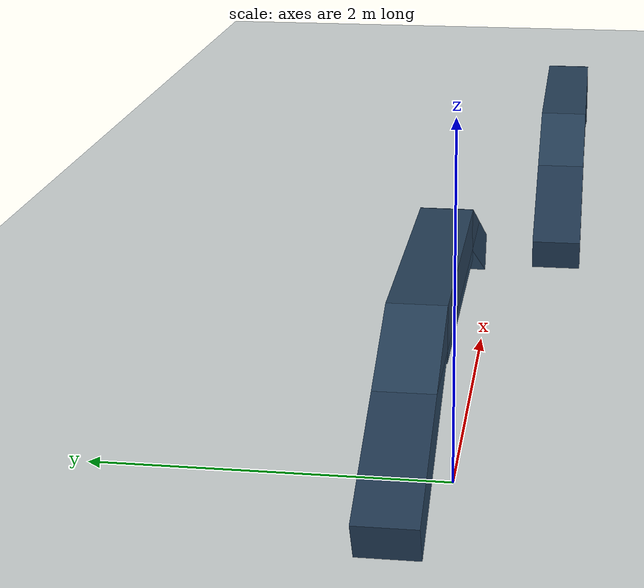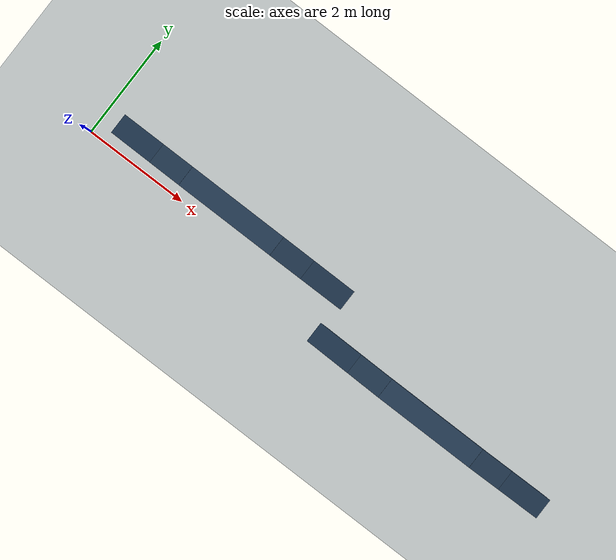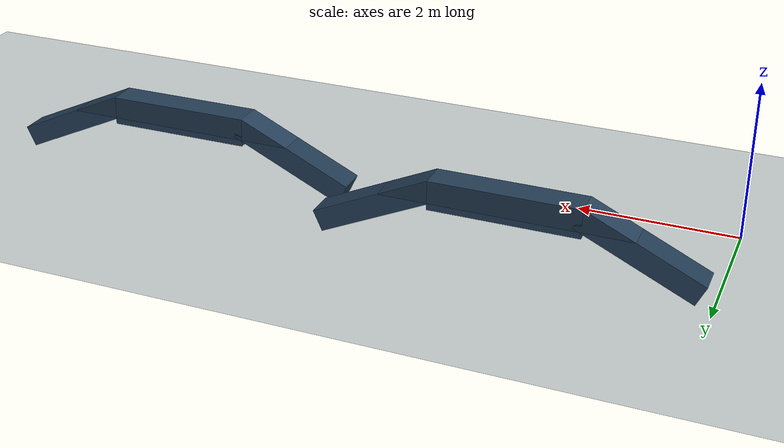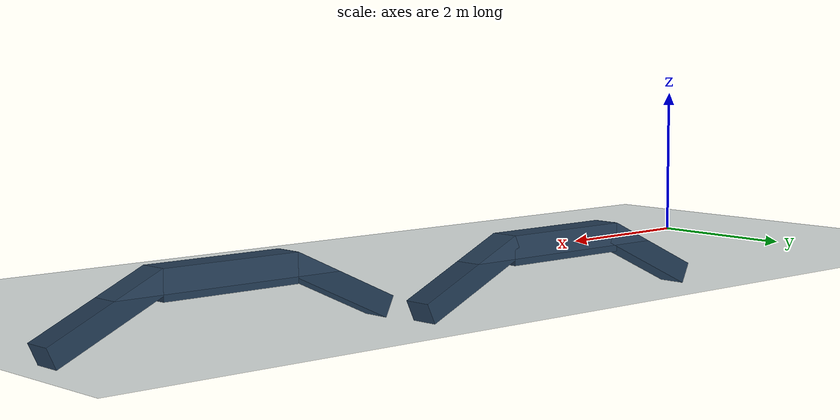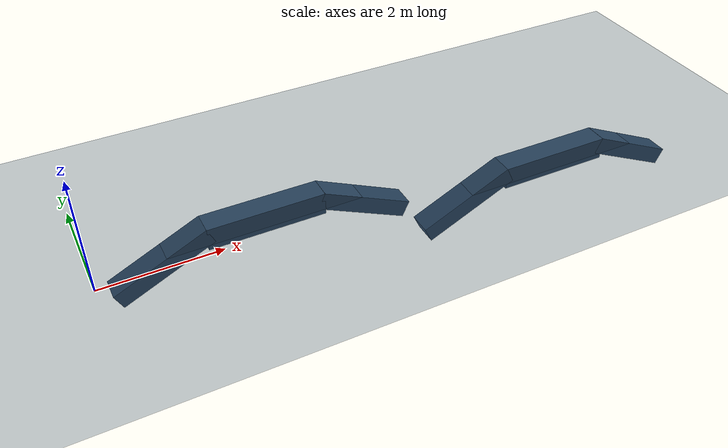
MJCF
<mujoco model="scenario">
  <option timestep="0.00050000000000000001" integrator="implicitfast"/>
  <visual>
    <global azimuth="150" elevation="-20"/>
    <headlight ambient="0.29999999999999999 0.29999999999999999 0.29999999999999999" diffuse="0.59999999999999998 0.59999999999999998 0.59999999999999998" specular="0 0 0"/>
    <rgba haze="0.14999999999999999 0.25 0.34999999999999998 1"/>
  </visual>
  <default>
    <default class="scene/"/>
  </default>
  <asset>
    <texture name="skybox" builtin="gradient" rgb1="0.29999999999999999 0.5 0.69999999999999996" rgb2="0 0 0" width="512" height="3072"/>
    <texture name="grouplane" type="2d" builtin="checker" rgb1="0.20000000000000001 0.29999999999999999 0.40000000000000002" rgb2="0.10000000000000001 0.20000000000000001 0.29999999999999999" mark="edge" markrgb="0.80000000000000004 0.80000000000000004 0.80000000000000004" width="300" height="300"/>
    <material name="groundplane_mat" class="scene/" texture="grouplane" texrepeat="5 5" texuniform="true" reflectance="0.20000000000000001"/>
  </asset>
  <worldbody>
    <light name="global_light" class="scene/" directional="false" pos="0 0 3" dir="0 0 -1"/>
    <geom name="floor" class="scene/" type="plane" conaffinity="15" condim="3" size="0 0 0.125" material="groundplane_mat"/>
    <geom name="high" class="scene/" type="box" conaffinity="15" pos="2.8 0.4 0.1" condim="3" size="1 0.2 0.2" material="groundplane_mat"/>
    <geom name="slide1" class="scene/" type="box" conaffinity="15" pos="1.08 0.4 -0.199" axisangle="0 -1 0 25" condim="3" size="0.8638 0.2 0.15" material="groundplane_mat"/>
    <geom name="slide2" class="scene/" type="box" conaffinity="15" pos="4.52 0.4 -0.199" axisangle="0 1 0 25" condim="3" size="0.8638 0.2 0.15" material="groundplane_mat"/>
    <geom name="high2" class="scene/" type="box" conaffinity="15" pos="7.8 -0.4 0.1" condim="3" size="1 0.2 0.2" material="groundplane_mat"/>
    <geom name="slide3" class="scene/" type="box" conaffinity="15" pos="6.08 -0.4 -0.199" axisangle="0 -1 0 25" condim="3" size="0.8638 0.2 0.15" material="groundplane_mat"/>
    <geom name="slide4" class="scene/" type="box" conaffinity="15" pos="9.52 -0.4 -0.199" axisangle="0 1 0 25" condim="3" size="0.8638 0.2 0.15" material="groundplane_mat"/>
  </worldbody>
</mujoco>
